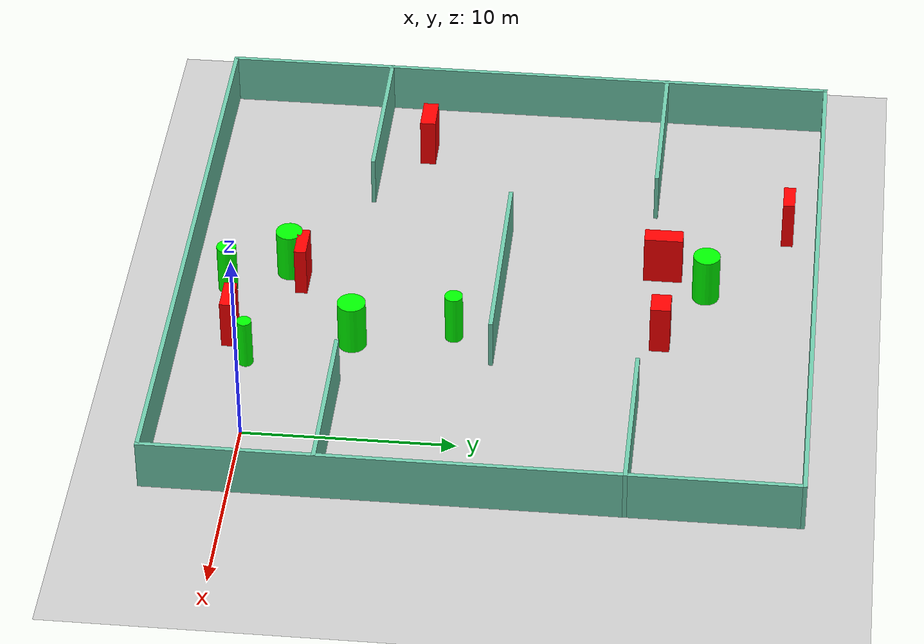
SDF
<sdf version="1.7">
 <world name="default">
  <light name="sun" type="directional">
   <pose>0 0 10 0 -0 0</pose>
   <diffuse>0.8 0.8 0.8 1</diffuse>
   <specular>0.2 0.2 0.2 1</specular>
   <attenuation>
    <range>1000</range>
    <constant>0.9</constant>
    <linear>0.01</linear>
    <quadratic>0.001</quadratic>
   </attenuation>
   <direction>-0.5 0.1 -0.9</direction>
   <spot><inner_angle>0</inner_angle><outer_angle>0</outer_angle><falloff>0</falloff></spot>
  </light>
  <model name="ground_plane">
   <static>1</static>
   <link name="link">
    <collision name="collision">
     <geometry><plane><normal>0 0 1</normal><size>100 100</size></plane></geometry>
     <surface>
      <contact><collide_bitmask>65535</collide_bitmask></contact>
      <friction><ode><mu>100</mu><mu2>50</mu2></ode></friction>
     </surface>
    </collision>
    <visual name="visual">
     <cast_shadows>0</cast_shadows>
     <geometry><plane><normal>0 0 1</normal><size>100 100</size></plane></geometry>
     <material>
      <script><uri>file://media/materials/scripts/gazebo.material</uri><name>Gazebo/Grey</name></script>
     </material>
    </visual>
   </link>
  </model>
  <gravity>0 0 -9.8</gravity>
  <magnetic_field>6e-06 2.3e-05 -4.2e-05</magnetic_field>
  <atmosphere type="adiabatic"/>
  <physics type="ode">
   <max_step_size>0.001</max_step_size>
   <real_time_factor>1</real_time_factor>
   <real_time_update_rate>1000</real_time_update_rate>
  </physics>
  <scene><ambient>0.4 0.4 0.4 1</ambient><background>0.7 0.7 0.7 1</background><shadows>1</shadows></scene>
  <spherical_coordinates>
   <surface_model>EARTH_WGS84</surface_model>
   <latitude_deg>0</latitude_deg>
   <longitude_deg>0</longitude_deg>
   <elevation>0</elevation>
   <heading_deg>0</heading_deg>
  </spherical_coordinates>
  <model name="my_base_walls">
   <link name="Wall_10">
    <collision name="Wall_10_Collision">
     <geometry><box><size>8.2 0.2 2.5</size></box></geometry>
     <pose>0 0 1.25 0 -0 0</pose>
    </collision>
    <visual name="Wall_10_Visual">
     <pose>0 0 1.25 0 -0 0</pose>
     <geometry><box><size>8.2 0.2 2.5</size></box></geometry>
     <material>
      <script><uri>file://media/materials/scripts/gazebo.material</uri><name>Gazebo/Grey</name></script>
      <ambient>0.435294 0.796078 0.67451 1</ambient>
     </material>
     <meta><layer>0</layer></meta>
    </visual>
    <pose>-11 -7 0 0 -0 0</pose>
   </link>
   <link name="Wall_12">
    <collision name="Wall_12_Collision">
     <geometry><box><size>8.2 0.2 2.5</size></box></geometry>
     <pose>0 0 1.25 0 -0 0</pose>
    </collision>
    <visual name="Wall_12_Visual">
     <pose>0 0 1.25 0 -0 0</pose>
     <geometry><box><size>8.2 0.2 2.5</size></box></geometry>
     <material>
      <script><uri>file://media/materials/scripts/gazebo.material</uri><name>Gazebo/Grey</name></script>
      <ambient>0.435294 0.796078 0.67451 1</ambient>
     </material>
     <meta><layer>0</layer></meta>
    </visual>
    <pose>-11 7 0 0 -0 0</pose>
   </link>
   <link name="Wall_14">
    <collision name="Wall_14_Collision">
     <geometry><box><size>8.2 0.2 2.5</size></box></geometry>
     <pose>0 0 1.25 0 -0 0</pose>
    </collision>
    <visual name="Wall_14_Visual">
     <pose>0 0 1.25 0 -0 0</pose>
     <geometry><box><size>8.2 0.2 2.5</size></box></geometry>
     <material>
      <script><uri>file://media/materials/scripts/gazebo.material</uri><name>Gazebo/Grey</name></script>
      <ambient>0.435294 0.796078 0.67451 1</ambient>
     </material>
     <meta><layer>0</layer></meta>
    </visual>
    <pose>11 7 0 0 -0 3.14159</pose>
   </link>
   <link name="Wall_16">
    <collision name="Wall_16_Collision">
     <geometry><box><size>10.2 0.2 2.5</size></box></geometry>
     <pose>0 0 1.25 0 -0 0</pose>
    </collision>
    <visual name="Wall_16_Visual">
     <pose>0 0 1.25 0 -0 0</pose>
     <geometry><box><size>10.2 0.2 2.5</size></box></geometry>
     <material>
      <script><uri>file://media/materials/scripts/gazebo.material</uri><name>Gazebo/Grey</name></script>
      <ambient>0.435294 0.796078 0.67451 1</ambient>
     </material>
     <meta><layer>0</layer></meta>
    </visual>
    <pose>0 0 0 0 -0 3.14159</pose>
   </link>
   <link name="Wall_2">
    <collision name="Wall_2_Collision">
     <geometry><box><size>30.2 0.2 2.5</size></box></geometry>
     <pose>0 0 1.25 0 -0 0</pose>
    </collision>
    <visual name="Wall_2_Visual">
     <pose>0 0 1.25 0 -0 0</pose>
     <geometry><box><size>30.2 0.2 2.5</size></box></geometry>
     <material>
      <script><uri>file://media/materials/scripts/gazebo.material</uri><name>Gazebo/Grey</name></script>
      <ambient>0.435294 0.796078 0.67451 1</ambient>
     </material>
     <meta><layer>0</layer></meta>
    </visual>
    <pose>0 -15 0 0 -0 3.14159</pose>
   </link>
   <link name="Wall_3">
    <collision name="Wall_3_Collision">
     <geometry><box><size>30.2 0.2 2.5</size></box></geometry>
     <pose>0 0 1.25 0 -0 0</pose>
    </collision>
    <visual name="Wall_3_Visual">
     <pose>0 0 1.25 0 -0 0</pose>
     <geometry><box><size>30.2 0.2 2.5</size></box></geometry>
     <material>
      <script><uri>file://media/materials/scripts/gazebo.material</uri><name>Gazebo/Grey</name></script>
      <ambient>0.435294 0.796078 0.67451 1</ambient>
     </material>
     <meta><layer>0</layer></meta>
    </visual>
    <pose>-15 0 0 0 -0 1.5708</pose>
   </link>
   <link name="Wall_4">
    <collision name="Wall_4_Collision">
     <geometry><box><size>30.2 0.2 2.5</size></box></geometry>
     <pose>0 0 1.25 0 -0 0</pose>
    </collision>
    <visual name="Wall_4_Visual">
     <pose>0 0 1.25 0 -0 0</pose>
     <geometry><box><size>30.2 0.2 2.5</size></box></geometry>
     <material>
      <script><uri>file://media/materials/scripts/gazebo.material</uri><name>Gazebo/Grey</name></script>
      <ambient>0.435294 0.796078 0.67451 1</ambient>
     </material>
     <meta><layer>0</layer></meta>
    </visual>
    <pose>0 15 0 0 -0 0</pose>
   </link>
   <link name="Wall_6">
    <collision name="Wall_6_Collision">
     <geometry><box><size>30.2 0.2 2.5</size></box></geometry>
     <pose>0 0 1.25 0 -0 0</pose>
    </collision>
    <visual name="Wall_6_Visual">
     <pose>0 0 1.25 0 -0 0</pose>
     <geometry><box><size>30.2 0.2 2.5</size></box></geometry>
     <material>
      <script><uri>file://media/materials/scripts/gazebo.material</uri><name>Gazebo/Grey</name></script>
      <ambient>0.435294 0.796078 0.67451 1</ambient>
     </material>
     <meta><layer>0</layer></meta>
    </visual>
    <pose>15 0 0 0 -0 1.5708</pose>
   </link>
   <link name="Wall_8">
    <collision name="Wall_8_Collision">
     <geometry><box><size>8.2 0.2 2.5</size></box></geometry>
     <pose>0 0 1.25 0 -0 0</pose>
    </collision>
    <visual name="Wall_8_Visual">
     <pose>0 0 1.25 0 -0 0</pose>
     <geometry><box><size>8.2 0.2 2.5</size></box></geometry>
     <material>
      <script><uri>file://media/materials/scripts/gazebo.material</uri><name>Gazebo/Grey</name></script>
      <ambient>0.435294 0.796078 0.67451 1</ambient>
     </material>
     <meta><layer>0</layer></meta>
    </visual>
    <pose>11 -7 0 0 -0 3.14159</pose>
   </link>
   <static>1</static>
   <pose>-11 11 0 0 -0 0</pose>
  </model>
  <model name="cylinder1">
   <static>1</static>
   <link name="link">
    <inertial>
     <mass>1</mass>
     <inertia><ixx>0.5</ixx><ixy>0</ixy><ixz>0</ixz><iyy>0.5</iyy><iyz>0</iyz><izz>1</izz></inertia>
    </inertial>
    <collision name="collision">
     <geometry><cylinder><radius>0.6442472045154527</radius><length>2.5</length></cylinder></geometry>
    </collision>
    <visual name="visual">
     <geometry><cylinder><radius>0.6442472045154527</radius><length>2.5</length></cylinder></geometry>
     <material>
      <ambient>0 1 0 1</ambient>
      <diffuse>0 1 0 1</diffuse>
      <specular>0.1 0.1 0.1 1</specular>
      <emissive>0 0 0 0</emissive>
     </material>
    </visual>
   </link>
   <pose>-11.988529511631656 0.675239050184949 1.25 0 0 0</pose>
  </model>
  <model name="cylinder2">
   <static>1</static>
   <link name="link">
    <inertial>
     <mass>1</mass>
     <inertia><ixx>0.5</ixx><ixy>0</ixy><ixz>0</ixz><iyy>0.5</iyy><iyz>0</iyz><izz>1</izz></inertia>
    </inertial>
    <collision name="collision">
     <geometry><cylinder><radius>0.431517865146303</radius><length>2.5</length></cylinder></geometry>
    </collision>
    <visual name="visual">
     <geometry><cylinder><radius>0.431517865146303</radius><length>2.5</length></cylinder></geometry>
     <material>
      <ambient>0 1 0 1</ambient>
      <diffuse>0 1 0 1</diffuse>
      <specular>0.1 0.1 0.1 1</specular>
      <emissive>0 0 0 0</emissive>
     </material>
    </visual>
   </link>
   <pose>-7.829008756152184 9.065875965389498 1.25 0 0 0</pose>
  </model>
  <model name="cylinder3">
   <static>1</static>
   <link name="link">
    <inertial>
     <mass>1</mass>
     <inertia><ixx>0.5</ixx><ixy>0</ixy><ixz>0</ixz><iyy>0.5</iyy><iyz>0</iyz><izz>1</izz></inertia>
    </inertial>
    <collision name="collision">
     <geometry><cylinder><radius>0.35122616993183325</radius><length>2.5</length></cylinder></geometry>
    </collision>
    <visual name="visual">
     <geometry><cylinder><radius>0.35122616993183325</radius><length>2.5</length></cylinder></geometry>
     <material>
      <ambient>0 1 0 1</ambient>
      <diffuse>0 1 0 1</diffuse>
      <specular>0.1 0.1 0.1 1</specular>
      <emissive>0 0 0 0</emissive>
     </material>
    </visual>
   </link>
   <pose>-5.046800177369937 -0.49940579173654864 1.25 0 0 0</pose>
  </model>
  <model name="cylinder4">
   <static>1</static>
   <link name="link">
    <inertial>
     <mass>1</mass>
     <inertia><ixx>0.5</ixx><ixy>0</ixy><ixz>0</ixz><iyy>0.5</iyy><iyz>0</iyz><izz>1</izz></inertia>
    </inertial>
    <collision name="collision">
     <geometry><cylinder><radius>0.4723029470193181</radius><length>2.5</length></cylinder></geometry>
    </collision>
    <visual name="visual">
     <geometry><cylinder><radius>0.4723029470193181</radius><length>2.5</length></cylinder></geometry>
     <material>
      <ambient>0 1 0 1</ambient>
      <diffuse>0 1 0 1</diffuse>
      <specular>0.1 0.1 0.1 1</specular>
      <emissive>0 0 0 0</emissive>
     </material>
    </visual>
   </link>
   <pose>-10.527261484605742 -2.162147393212821 1.25 0 0 0</pose>
  </model>
  <model name="cylinder5">
   <static>1</static>
   <link name="link">
    <inertial>
     <mass>1</mass>
     <inertia><ixx>0.5</ixx><ixy>0</ixy><ixz>0</ixz><iyy>0.5</iyy><iyz>0</iyz><izz>1</izz></inertia>
    </inertial>
    <collision name="collision">
     <geometry><cylinder><radius>0.6499959076887701</radius><length>2.5</length></cylinder></geometry>
    </collision>
    <visual name="visual">
     <geometry><cylinder><radius>0.6499959076887701</radius><length>2.5</length></cylinder></geometry>
     <material>
      <ambient>0 1 0 1</ambient>
      <diffuse>0 1 0 1</diffuse>
      <specular>0.1 0.1 0.1 1</specular>
      <emissive>0 0 0 0</emissive>
     </material>
    </visual>
   </link>
   <pose>-11.98266234608951 20.77915629584613 1.25 0 0 0</pose>
  </model>
  <model name="cylinder6">
   <static>1</static>
   <link name="link">
    <inertial>
     <mass>1</mass>
     <inertia><ixx>0.5</ixx><ixy>0</ixy><ixz>0</ixz><iyy>0.5</iyy><iyz>0</iyz><izz>1</izz></inertia>
    </inertial>
    <collision name="collision">
     <geometry><cylinder><radius>0.6796488171831635</radius><length>2.5</length></cylinder></geometry>
    </collision>
    <visual name="visual">
     <geometry><cylinder><radius>0.6796488171831635</radius><length>2.5</length></cylinder></geometry>
     <material>
      <ambient>0 1 0 1</ambient>
      <diffuse>0 1 0 1</diffuse>
      <specular>0.1 0.1 0.1 1</specular>
      <emissive>0 0 0 0</emissive>
     </material>
    </visual>
   </link>
   <pose>-6.863086803975033 4.329163690646524 1.25 0 0 0</pose>
  </model>
  <model name="box1">
   <static>1</static>
   <link name="link">
    <inertial>
     <mass>1</mass>
     <inertia><ixx>0.083</ixx><ixy>0</ixy><ixz>0</ixz><iyy>0.083</iyy><iyz>0</iyz><izz>0.083</izz></inertia>
    </inertial>
    <collision name="collision">
     <geometry><box><size>1.706503422290985 0.7511196341652367 2.5</size></box></geometry>
    </collision>
    <visual name="visual">
     <geometry><box><size>1.706503422290985 0.7511196341652367 2.5</size></box></geometry>
     <material>
      <ambient>1 0 0 1</ambient>
      <diffuse>1 0 0 1</diffuse>
      <specular>0.1 0.1 0.1 1</specular>
      <emissive>0 0 0 0</emissive>
     </material>
    </visual>
    <sensor name="my_contact" type="contact">
     <contact><collision>box_collision</collision><topic>__default_topic__</topic></contact>
    </sensor>
   </link>
   <pose>-22.14666953350684 6.338061523919828 1.25 0 0 0</pose>
  </model>
  <model name="box2">
   <static>1</static>
   <link name="link">
    <inertial>
     <mass>1</mass>
     <inertia><ixx>0.083</ixx><ixy>0</ixy><ixz>0</ixz><iyy>0.083</iyy><iyz>0</iyz><izz>0.083</izz></inertia>
    </inertial>
    <collision name="collision">
     <geometry><box><size>1.4670882667853136 0.5755426075950932 2.5</size></box></geometry>
    </collision>
    <visual name="visual">
     <geometry><box><size>1.4670882667853136 0.5755426075950932 2.5</size></box></geometry>
     <material>
      <ambient>1 0 0 1</ambient>
      <diffuse>1 0 0 1</diffuse>
      <specular>0.1 0.1 0.1 1</specular>
      <emissive>0 0 0 0</emissive>
     </material>
    </visual>
    <sensor name="my_contact" type="contact">
     <contact><collision>box_collision</collision><topic>__default_topic__</topic></contact>
    </sensor>
   </link>
   <pose>-17.01178199484292 24.531293055387103 1.25 0 0 0</pose>
  </model>
  <model name="box3">
   <static>1</static>
   <link name="link">
    <inertial>
     <mass>1</mass>
     <inertia><ixx>0.083</ixx><ixy>0</ixy><ixz>0</ixz><iyy>0.083</iyy><iyz>0</iyz><izz>0.083</izz></inertia>
    </inertial>
    <collision name="collision">
     <geometry><box><size>0.8235467838644941 1.8558371232944912 2.5</size></box></geometry>
    </collision>
    <visual name="visual">
     <geometry><box><size>0.8235467838644941 1.8558371232944912 2.5</size></box></geometry>
     <material>
      <ambient>1 0 0 1</ambient>
      <diffuse>1 0 0 1</diffuse>
      <specular>0.1 0.1 0.1 1</specular>
      <emissive>0 0 0 0</emissive>
     </material>
    </visual>
    <sensor name="my_contact" type="contact">
     <contact><collision>box_collision</collision><topic>__default_topic__</topic></contact>
    </sensor>
   </link>
   <pose>-13.372280351693384 18.6450089024443 1.25 0 0 0</pose>
  </model>
  <model name="box4">
   <static>1</static>
   <link name="link">
    <inertial>
     <mass>1</mass>
     <inertia><ixx>0.083</ixx><ixy>0</ixy><ixz>0</ixz><iyy>0.083</iyy><iyz>0</iyz><izz>0.083</izz></inertia>
    </inertial>
    <collision name="collision">
     <geometry><box><size>1.6831801170235743 0.6199871457180111 2.5</size></box></geometry>
    </collision>
    <visual name="visual">
     <geometry><box><size>1.6831801170235743 0.6199871457180111 2.5</size></box></geometry>
     <material>
      <ambient>1 0 0 1</ambient>
      <diffuse>1 0 0 1</diffuse>
      <specular>0.1 0.1 0.1 1</specular>
      <emissive>0 0 0 0</emissive>
     </material>
    </visual>
    <sensor name="my_contact" type="contact">
     <contact><collision>box_collision</collision><topic>__default_topic__</topic></contact>
    </sensor>
   </link>
   <pose>-6.964036255969301 -1.524851856907957 1.25 0 0 0</pose>
  </model>
  <model name="box5">
   <static>1</static>
   <link name="link">
    <inertial>
     <mass>1</mass>
     <inertia><ixx>0.083</ixx><ixy>0</ixy><ixz>0</ixz><iyy>0.083</iyy><iyz>0</iyz><izz>0.083</izz></inertia>
    </inertial>
    <collision name="collision">
     <geometry><box><size>1.1924182640316348 0.9503831811146081 2.5</size></box></geometry>
    </collision>
    <visual name="visual">
     <geometry><box><size>1.1924182640316348 0.9503831811146081 2.5</size></box></geometry>
     <material>
      <ambient>1 0 0 1</ambient>
      <diffuse>1 0 0 1</diffuse>
      <specular>0.1 0.1 0.1 1</specular>
      <emissive>0 0 0 0</emissive>
     </material>
    </visual>
    <sensor name="my_contact" type="contact">
     <contact><collision>box_collision</collision><topic>__default_topic__</topic></contact>
    </sensor>
   </link>
   <pose>-8.265475778582841 18.823310734678575 1.25 0 0 0</pose>
  </model>
  <model name="box6">
   <static>1</static>
   <link name="link">
    <inertial>
     <mass>1</mass>
     <inertia><ixx>0.083</ixx><ixy>0</ixy><ixz>0</ixz><iyy>0.083</iyy><iyz>0</iyz><izz>0.083</izz></inertia>
    </inertial>
    <collision name="collision">
     <geometry><box><size>1.743529624187802 0.573881061487178 2.5</size></box></geometry>
    </collision>
    <visual name="visual">
     <geometry><box><size>1.743529624187802 0.573881061487178 2.5</size></box></geometry>
     <material>
      <ambient>1 0 0 1</ambient>
      <diffuse>1 0 0 1</diffuse>
      <specular>0.1 0.1 0.1 1</specular>
      <emissive>0 0 0 0</emissive>
     </material>
    </visual>
    <sensor name="my_contact" type="contact">
     <contact><collision>box_collision</collision><topic>__default_topic__</topic></contact>
    </sensor>
   </link>
   <pose>-11.290943347897038 1.3946478115369807 1.25 0 0 0</pose>
  </model>
 </world>
</sdf>
